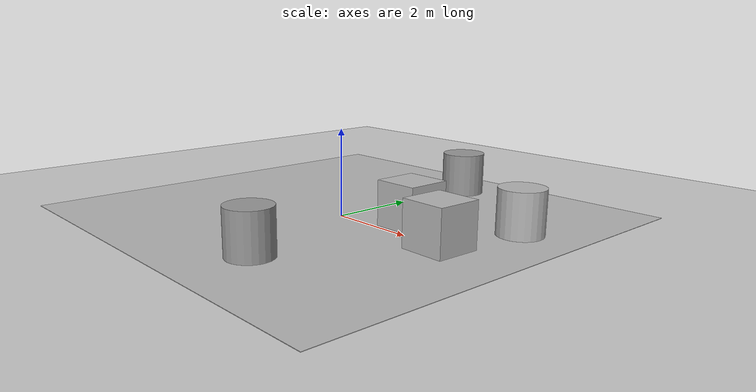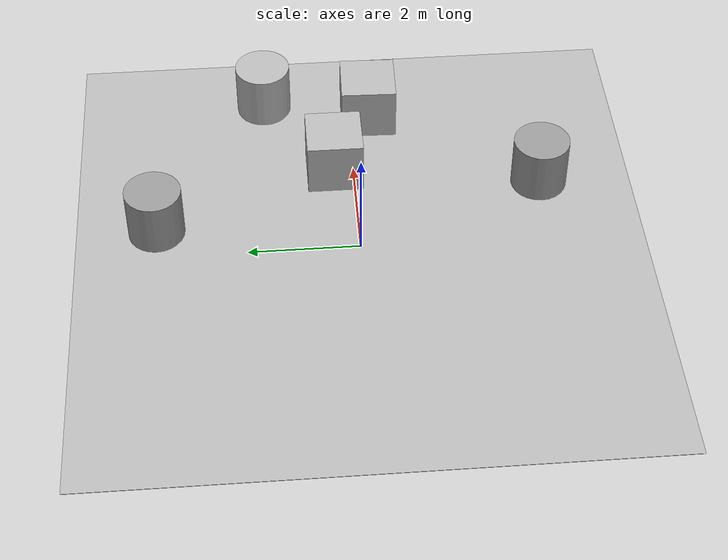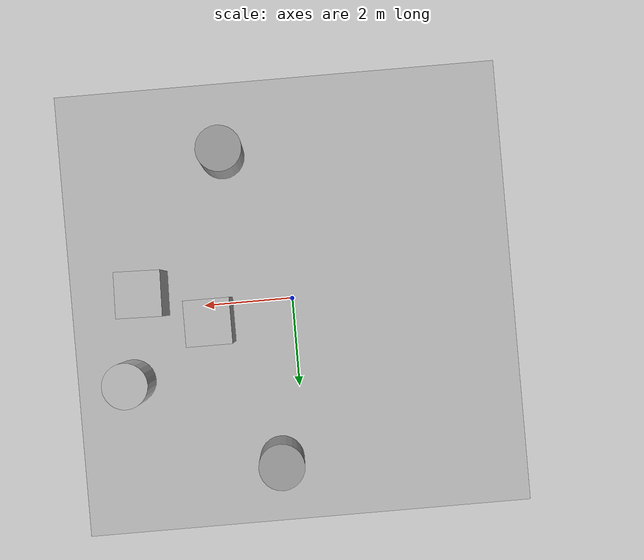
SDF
<sdf version="1.7">
 <world name="default">
  <model name="ground_plane">
   <static>1</static>
   <link name="link">
    <collision name="collision">
     <geometry><plane><normal>0 0 1</normal><size>100 100</size></plane></geometry>
     <surface><friction><ode><mu>100</mu><mu2>50</mu2></ode></friction></surface>
    </collision>
    <visual name="visual">
     <cast_shadows>0</cast_shadows>
     <geometry><plane><normal>0 0 1</normal><size>100 100</size></plane></geometry>
     <material>
      <script><uri>file://media/materials/scripts/gazebo.material</uri><name>Gazebo/Grey</name></script>
     </material>
    </visual>
   </link>
  </model>
  <model name="ground_shadow_receiver">
   <pose>0 0 0.1 0 -0 0</pose>
   <static>1</static>
   <link name="link">
    <collision name="collision">
     <geometry><plane><normal>0 0 1</normal><size>10 10</size></plane></geometry>
     <surface>
      <contact><collide_bitmask>65535</collide_bitmask></contact>
      <friction><ode><mu>100</mu><mu2>50</mu2></ode></friction>
     </surface>
    </collision>
    <visual name="visual">
     <cast_shadows>0</cast_shadows>
     <geometry><plane><normal>0 0 1</normal><size>10 10</size></plane></geometry>
     <material>
      <script>
       <uri>file://media/materials/scripts/spotlight_shadow_demo.material</uri>
       <name>Gazebo/SpotLightShadowDemo</name>
      </script>
     </material>
    </visual>
   </link>
  </model>
  <model name="box">
   <pose>1.84518 0.354012 0.6 0 0 -0.001339</pose>
   <link name="link">
    <collision name="collision"><geometry><box><size>1 1 1</size></box></geometry></collision>
    <visual name="visual">
     <geometry><box><size>1 1 1</size></box></geometry>
     <material>
      <script>
       <uri>file://media/materials/scripts/spotlight_shadow_demo.material</uri>
       <name>Gazebo/SpotLightShadowDemo</name>
      </script>
     </material>
    </visual>
    <inertial>
     <inertia><ixx>1</ixx><ixy>0</ixy><ixz>0</ixz><iyy>1</iyy><iyz>0</iyz><izz>1</izz></inertia>
     <mass>1</mass>
    </inertial>
   </link>
  </model>
  <gravity>0 0 -9.8</gravity>
  <magnetic_field>6e-06 2.3e-05 -4.2e-05</magnetic_field>
  <atmosphere type="adiabatic"/>
  <physics type="ode">
   <max_step_size>0.001</max_step_size>
   <real_time_factor>1</real_time_factor>
   <real_time_update_rate>1000</real_time_update_rate>
  </physics>
  <scene><ambient>0.4 0.4 0.4 1</ambient><background>0.7 0.7 0.7 1</background><shadows>1</shadows></scene>
  <audio><device>default</device></audio>
  <spherical_coordinates>
   <surface_model>EARTH_WGS84</surface_model>
   <latitude_deg>0</latitude_deg>
   <longitude_deg>0</longitude_deg>
   <elevation>0</elevation>
   <heading_deg>0</heading_deg>
  </spherical_coordinates>
  <model name="box_clone">
   <pose>3.28283 -0.369733 0.6 0 -0 -0.027775</pose>
   <link name="link">
    <collision name="collision"><geometry><box><size>1 1 1</size></box></geometry></collision>
    <visual name="visual">
     <geometry><box><size>1 1 1</size></box></geometry>
     <material>
      <script>
       <uri>file://media/materials/scripts/spotlight_shadow_demo.material</uri>
       <name>Gazebo/SpotLightShadowDemo</name>
      </script>
     </material>
    </visual>
    <inertial>
     <inertia><ixx>1</ixx><ixy>0</ixy><ixz>0</ixz><iyy>1</iyy><iyz>0</iyz><izz>1</izz></inertia>
     <mass>1</mass>
    </inertial>
   </link>
  </model>
  <model name="unit_cylinder">
   <pose>1.30322 -3.33323 0.599997 4e-06 3e-06 -0</pose>
   <link name="link">
    <inertial>
     <mass>1</mass>
     <inertia><ixx>0.145833</ixx><ixy>0</ixy><ixz>0</ixz><iyy>0.145833</iyy><iyz>0</iyz><izz>0.125</izz></inertia>
    </inertial>
    <collision name="collision">
     <geometry><cylinder><radius>0.5</radius><length>1</length></cylinder></geometry>
    </collision>
    <visual name="visual">
     <geometry><cylinder><radius>0.5</radius><length>1</length></cylinder></geometry>
     <material>
      <script><name>Gazebo/Grey</name><uri>file://media/materials/scripts/gazebo.material</uri></script>
     </material>
    </visual>
   </link>
  </model>
  <model name="unit_cylinder_0">
   <pose>0.526222 3.58359 0.599991 -0 -0 -0</pose>
   <link name="link">
    <inertial>
     <mass>1</mass>
     <inertia><ixx>0.145833</ixx><ixy>0</ixy><ixz>0</ixz><iyy>0.145833</iyy><iyz>0</iyz><izz>0.125</izz></inertia>
    </inertial>
    <collision name="collision">
     <geometry><cylinder><radius>0.5</radius><length>1</length></cylinder></geometry>
    </collision>
    <visual name="visual">
     <geometry><cylinder><radius>0.5</radius><length>1</length></cylinder></geometry>
     <material>
      <script><name>Gazebo/Grey</name><uri>file://media/materials/scripts/gazebo.material</uri></script>
     </material>
    </visual>
   </link>
  </model>
  <model name="unit_cylinder_1">
   <pose>3.72825 1.57409 0.599997 4e-06 3e-06 -0</pose>
   <link name="link">
    <inertial>
     <mass>1</mass>
     <inertia><ixx>0.145833</ixx><ixy>0</ixy><ixz>0</ixz><iyy>0.145833</iyy><iyz>0</iyz><izz>0.125</izz></inertia>
    </inertial>
    <collision name="collision">
     <geometry><cylinder><radius>0.5</radius><length>1</length></cylinder></geometry>
    </collision>
    <visual name="visual">
     <geometry><cylinder><radius>0.5</radius><length>1</length></cylinder></geometry>
     <material>
      <script>
       <uri>file://media/materials/scripts/spotlight_shadow_demo.material</uri>
       <name>__default__</name>
      </script>
     </material>
    </visual>
   </link>
  </model>
 </world>
</sdf>
